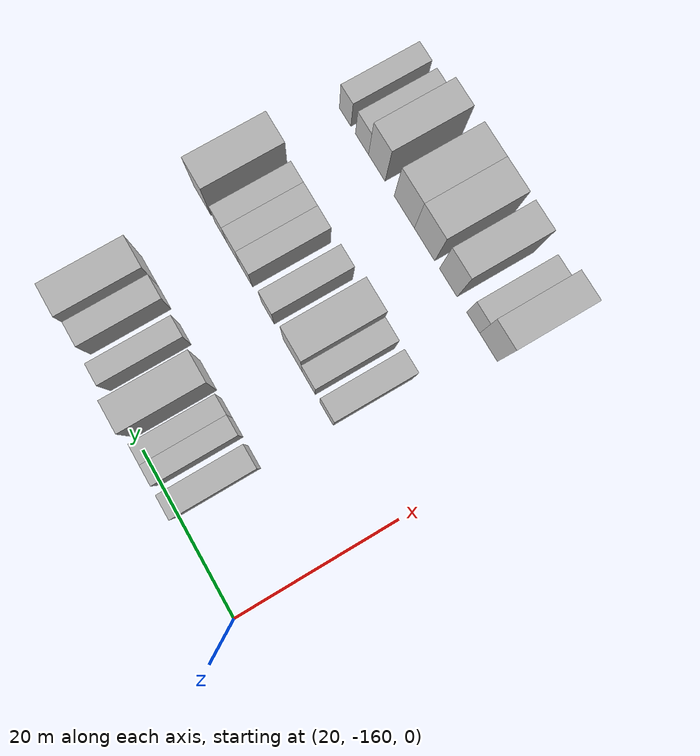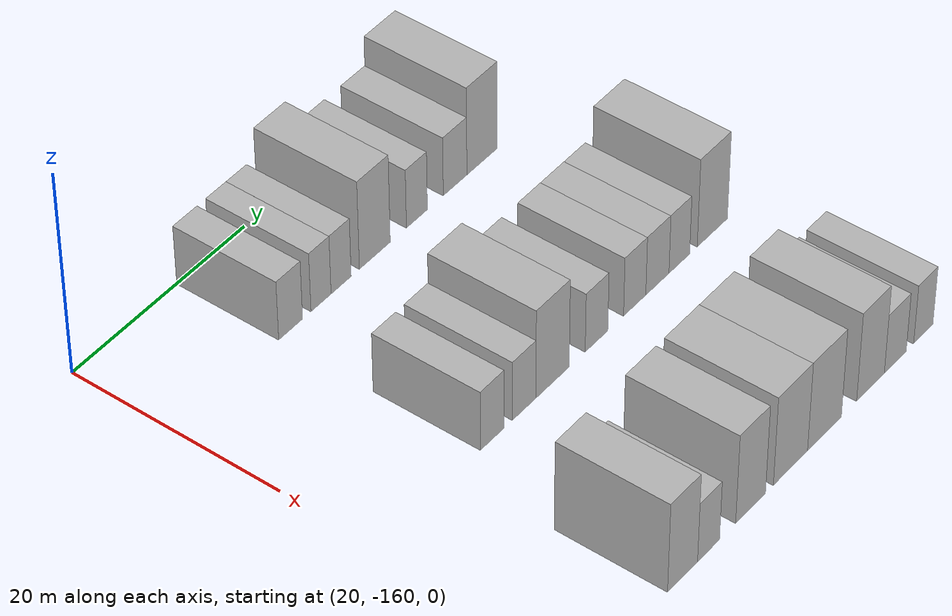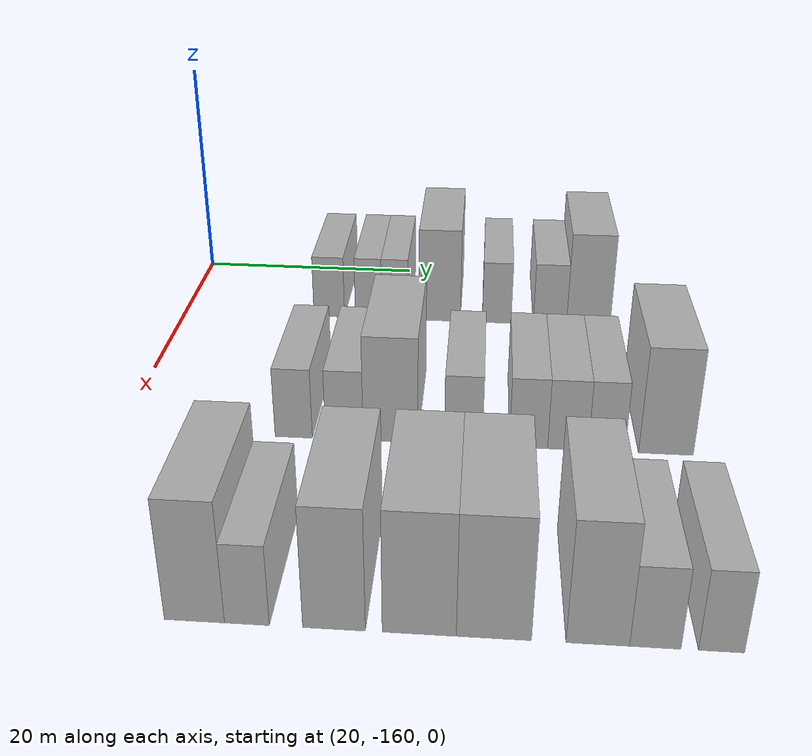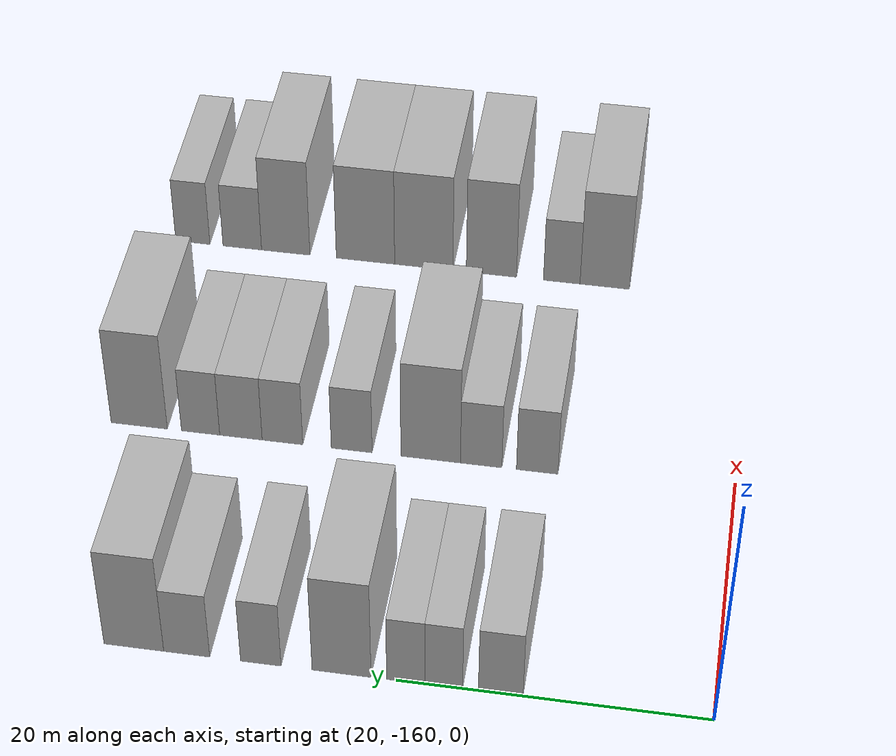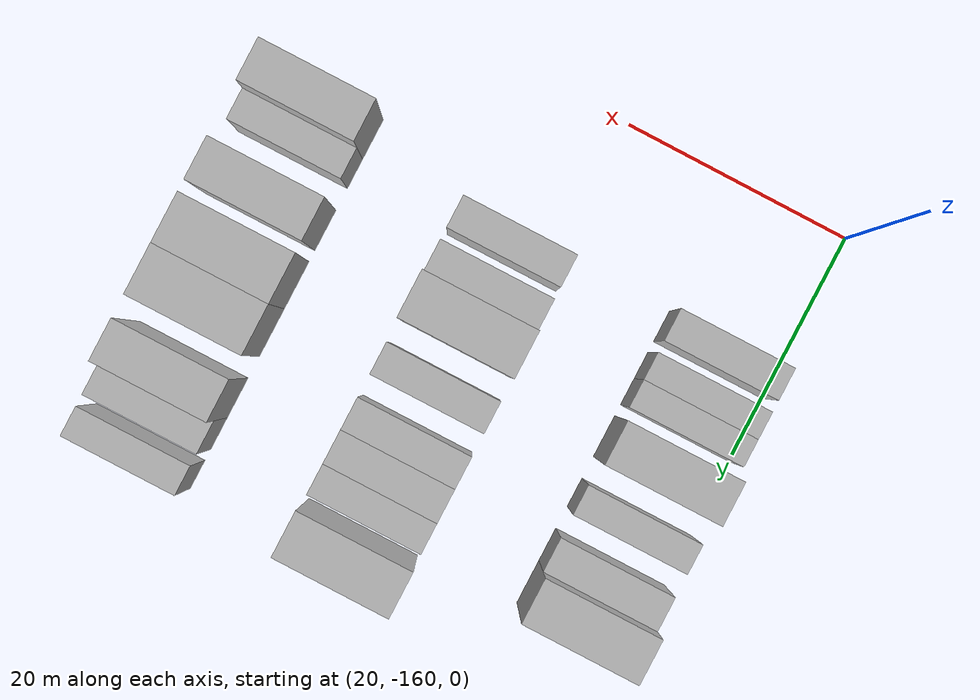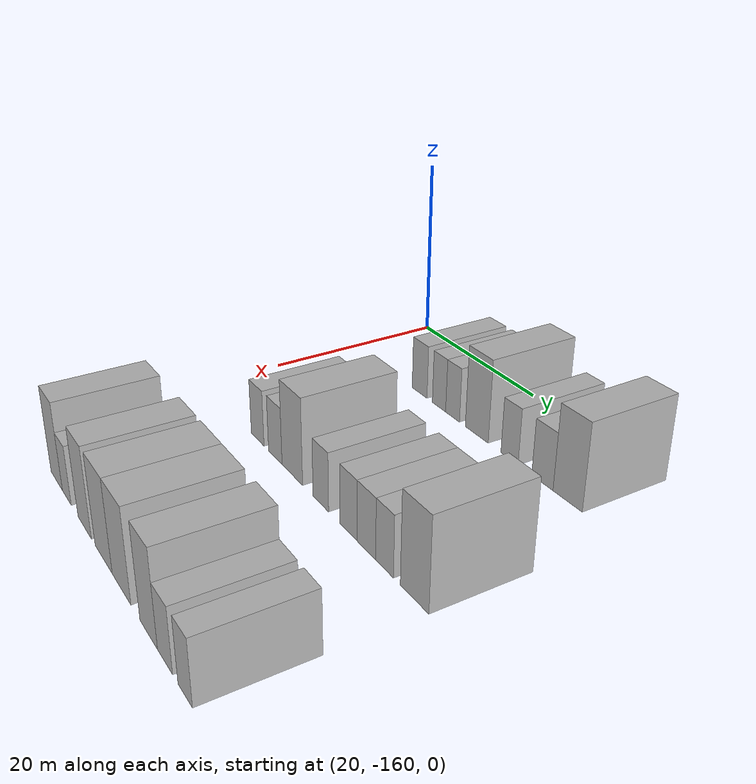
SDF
<sdf version="1.6">
 <world name="default">
  <model name="building_24">
   <static>1</static>
   <pose>25.0000 -146.6283 0 0.000000 0.000000 0.000000</pose>
   <link name="link">
    <pose>0 0 3.00 0 0 0</pose>
    <collision name="collision"><geometry><box><size>10.0000 2.8251 6.0000</size></box></geometry></collision>
    <visual name="visual">
     <cast_shadows>0</cast_shadows>
     <geometry><box><size>10.0000 2.8251 6.0000</size></box></geometry>
     <material>
      <script>
       <uri>model://HANNAS_wall/materials/scripts</uri>
       <uri>model://HANNAS_wall/materials/textures</uri>
       <name>vrc/HANNAS_wall</name>
      </script>
     </material>
    </visual>
   </link>
  </model>
  <model name="building_25">
   <static>1</static>
   <pose>25.0000 -143.0133 0 0.000000 0.000000 0.000000</pose>
   <link name="link">
    <pose>0 0 3.00 0 0 0</pose>
    <collision name="collision"><geometry><box><size>10.0000 2.4048 6.0000</size></box></geometry></collision>
    <visual name="visual">
     <cast_shadows>0</cast_shadows>
     <geometry><box><size>10.0000 2.4048 6.0000</size></box></geometry>
     <material>
      <script>
       <uri>model://HANNAS_wall/materials/scripts</uri>
       <uri>model://HANNAS_wall/materials/textures</uri>
       <name>vrc/HANNAS_wall</name>
      </script>
     </material>
    </visual>
   </link>
  </model>
  <model name="building_26">
   <static>1</static>
   <pose>25.0000 -140.5978 0 0.000000 0.000000 0.000000</pose>
   <link name="link">
    <pose>0 0 3.00 0 0 0</pose>
    <collision name="collision"><geometry><box><size>10.0000 2.4263 6.0000</size></box></geometry></collision>
    <visual name="visual">
     <cast_shadows>0</cast_shadows>
     <geometry><box><size>10.0000 2.4263 6.0000</size></box></geometry>
     <material>
      <script>
       <uri>model://HANNAS_wall/materials/scripts</uri>
       <uri>model://HANNAS_wall/materials/textures</uri>
       <name>vrc/HANNAS_wall</name>
      </script>
     </material>
    </visual>
   </link>
  </model>
  <model name="building_27">
   <static>1</static>
   <pose>25.0000 -136.4963 0 0.000000 0.000000 0.000000</pose>
   <link name="link">
    <pose>0 0 4.50 0 0 0</pose>
    <collision name="collision"><geometry><box><size>10.0000 3.7765 9.0000</size></box></geometry></collision>
    <visual name="visual">
     <cast_shadows>0</cast_shadows>
     <geometry><box><size>10.0000 3.7765 9.0000</size></box></geometry>
     <material>
      <script>
       <uri>model://HANNAS_wall/materials/scripts</uri>
       <uri>model://HANNAS_wall/materials/textures</uri>
       <name>vrc/HANNAS_wall</name>
      </script>
     </material>
    </visual>
   </link>
  </model>
  <model name="building_28">
   <static>1</static>
   <pose>25.0000 -131.3021 0 0.000000 0.000000 0.000000</pose>
   <link name="link">
    <pose>0 0 3.00 0 0 0</pose>
    <collision name="collision"><geometry><box><size>10.0000 2.6121 6.0000</size></box></geometry></collision>
    <visual name="visual">
     <cast_shadows>0</cast_shadows>
     <geometry><box><size>10.0000 2.6121 6.0000</size></box></geometry>
     <material>
      <script>
       <uri>model://HANNAS_wall/materials/scripts</uri>
       <uri>model://HANNAS_wall/materials/textures</uri>
       <name>vrc/HANNAS_wall</name>
      </script>
     </material>
    </visual>
   </link>
  </model>
  <model name="building_29">
   <static>1</static>
   <pose>25.0000 -126.5000 0 0.000000 0.000000 0.000000</pose>
   <link name="link">
    <pose>0 0 3.00 0 0 0</pose>
    <collision name="collision"><geometry><box><size>10.0000 2.9920 6.0000</size></box></geometry></collision>
    <visual name="visual">
     <cast_shadows>0</cast_shadows>
     <geometry><box><size>10.0000 2.9920 6.0000</size></box></geometry>
     <material>
      <script>
       <uri>model://HANNAS_wall/materials/scripts</uri>
       <uri>model://HANNAS_wall/materials/textures</uri>
       <name>vrc/HANNAS_wall</name>
      </script>
     </material>
    </visual>
   </link>
  </model>
  <model name="building_30">
   <static>1</static>
   <pose>25.0000 -123.0553 0 0.000000 0.000000 0.000000</pose>
   <link name="link">
    <pose>0 0 4.50 0 0 0</pose>
    <collision name="collision"><geometry><box><size>10.0000 3.8975 9.0000</size></box></geometry></collision>
    <visual name="visual">
     <cast_shadows>0</cast_shadows>
     <geometry><box><size>10.0000 3.8975 9.0000</size></box></geometry>
     <material>
      <script>
       <uri>model://HANNAS_wall/materials/scripts</uri>
       <uri>model://HANNAS_wall/materials/textures</uri>
       <name>vrc/HANNAS_wall</name>
      </script>
     </material>
    </visual>
   </link>
  </model>
  <model name="building_143">
   <static>1</static>
   <pose>44.0000 -146.5801 0 0.000000 0.000000 0.000000</pose>
   <link name="link">
    <pose>0 0 3.00 0 0 0</pose>
    <collision name="collision"><geometry><box><size>10.0000 2.8451 6.0000</size></box></geometry></collision>
    <visual name="visual">
     <cast_shadows>0</cast_shadows>
     <geometry><box><size>10.0000 2.8451 6.0000</size></box></geometry>
     <material>
      <script>
       <uri>model://HANNAS_wall/materials/scripts</uri>
       <uri>model://HANNAS_wall/materials/textures</uri>
       <name>vrc/HANNAS_wall</name>
      </script>
     </material>
    </visual>
   </link>
  </model>
  <model name="building_144">
   <static>1</static>
   <pose>44.0000 -142.7298 0 0.000000 0.000000 0.000000</pose>
   <link name="link">
    <pose>0 0 3.00 0 0 0</pose>
    <collision name="collision"><geometry><box><size>10.0000 2.8555 6.0000</size></box></geometry></collision>
    <visual name="visual">
     <cast_shadows>0</cast_shadows>
     <geometry><box><size>10.0000 2.8555 6.0000</size></box></geometry>
     <material>
      <script>
       <uri>model://HANNAS_wall/materials/scripts</uri>
       <uri>model://HANNAS_wall/materials/textures</uri>
       <name>vrc/HANNAS_wall</name>
      </script>
     </material>
    </visual>
   </link>
  </model>
  <model name="building_145">
   <static>1</static>
   <pose>44.0000 -139.2412 0 0.000000 0.000000 0.000000</pose>
   <link name="link">
    <pose>0 0 4.50 0 0 0</pose>
    <collision name="collision"><geometry><box><size>10.0000 4.1217 9.0000</size></box></geometry></collision>
    <visual name="visual">
     <cast_shadows>0</cast_shadows>
     <geometry><box><size>10.0000 4.1217 9.0000</size></box></geometry>
     <material>
      <script>
       <uri>model://HANNAS_wall/materials/scripts</uri>
       <uri>model://HANNAS_wall/materials/textures</uri>
       <name>vrc/HANNAS_wall</name>
      </script>
     </material>
    </visual>
   </link>
  </model>
  <model name="building_146">
   <static>1</static>
   <pose>44.0000 -133.7588 0 0.000000 0.000000 0.000000</pose>
   <link name="link">
    <pose>0 0 3.00 0 0 0</pose>
    <collision name="collision"><geometry><box><size>10.0000 2.8431 6.0000</size></box></geometry></collision>
    <visual name="visual">
     <cast_shadows>0</cast_shadows>
     <geometry><box><size>10.0000 2.8431 6.0000</size></box></geometry>
     <material>
      <script>
       <uri>model://HANNAS_wall/materials/scripts</uri>
       <uri>model://HANNAS_wall/materials/textures</uri>
       <name>vrc/HANNAS_wall</name>
      </script>
     </material>
    </visual>
   </link>
  </model>
  <model name="building_147">
   <static>1</static>
   <pose>44.0000 -128.9131 0 0.000000 0.000000 0.000000</pose>
   <link name="link">
    <pose>0 0 3.00 0 0 0</pose>
    <collision name="collision"><geometry><box><size>10.0000 2.8482 6.0000</size></box></geometry></collision>
    <visual name="visual">
     <cast_shadows>0</cast_shadows>
     <geometry><box><size>10.0000 2.8482 6.0000</size></box></geometry>
     <material>
      <script>
       <uri>model://HANNAS_wall/materials/scripts</uri>
       <uri>model://HANNAS_wall/materials/textures</uri>
       <name>vrc/HANNAS_wall</name>
      </script>
     </material>
    </visual>
   </link>
  </model>
  <model name="building_148">
   <static>1</static>
   <pose>44.0000 -125.9942 0 0.000000 0.000000 0.000000</pose>
   <link name="link">
    <pose>0 0 3.00 0 0 0</pose>
    <collision name="collision"><geometry><box><size>10.0000 2.9897 6.0000</size></box></geometry></collision>
    <visual name="visual">
     <cast_shadows>0</cast_shadows>
     <geometry><box><size>10.0000 2.9897 6.0000</size></box></geometry>
     <material>
      <script>
       <uri>model://HANNAS_wall/materials/scripts</uri>
       <uri>model://HANNAS_wall/materials/textures</uri>
       <name>vrc/HANNAS_wall</name>
      </script>
     </material>
    </visual>
   </link>
  </model>
  <model name="building_149">
   <static>1</static>
   <pose>44.0000 -123.1475 0 0.000000 0.000000 0.000000</pose>
   <link name="link">
    <pose>0 0 3.00 0 0 0</pose>
    <collision name="collision"><geometry><box><size>10.0000 2.7037 6.0000</size></box></geometry></collision>
    <visual name="visual">
     <cast_shadows>0</cast_shadows>
     <geometry><box><size>10.0000 2.7037 6.0000</size></box></geometry>
     <material>
      <script>
       <uri>model://HANNAS_wall/materials/scripts</uri>
       <uri>model://HANNAS_wall/materials/textures</uri>
       <name>vrc/HANNAS_wall</name>
      </script>
     </material>
    </visual>
   </link>
  </model>
  <model name="building_150">
   <static>1</static>
   <pose>44.0000 -118.8008 0 0.000000 0.000000 0.000000</pose>
   <link name="link">
    <pose>0 0 4.50 0 0 0</pose>
    <collision name="collision"><geometry><box><size>10.0000 3.9897 9.0000</size></box></geometry></collision>
    <visual name="visual">
     <cast_shadows>0</cast_shadows>
     <geometry><box><size>10.0000 3.9897 9.0000</size></box></geometry>
     <material>
      <script>
       <uri>model://HANNAS_wall/materials/scripts</uri>
       <uri>model://HANNAS_wall/materials/textures</uri>
       <name>vrc/HANNAS_wall</name>
      </script>
     </material>
    </visual>
   </link>
  </model>
  <model name="building_264">
   <static>1</static>
   <pose>63.0000 -149.2239 0 0.000000 0.000000 0.000000</pose>
   <link name="link">
    <pose>0 0 4.50 0 0 0</pose>
    <collision name="collision"><geometry><box><size>10.0000 3.6474 9.0000</size></box></geometry></collision>
    <visual name="visual">
     <cast_shadows>0</cast_shadows>
     <geometry><box><size>10.0000 3.6474 9.0000</size></box></geometry>
     <material>
      <script>
       <uri>model://HANNAS_wall/materials/scripts</uri>
       <uri>model://HANNAS_wall/materials/textures</uri>
       <name>vrc/HANNAS_wall</name>
      </script>
     </material>
    </visual>
   </link>
  </model>
  <model name="building_265">
   <static>1</static>
   <pose>63.0000 -146.0497 0 0.000000 0.000000 0.000000</pose>
   <link name="link">
    <pose>0 0 3.00 0 0 0</pose>
    <collision name="collision"><geometry><box><size>10.0000 2.7010 6.0000</size></box></geometry></collision>
    <visual name="visual">
     <cast_shadows>0</cast_shadows>
     <geometry><box><size>10.0000 2.7010 6.0000</size></box></geometry>
     <material>
      <script>
       <uri>model://HANNAS_wall/materials/scripts</uri>
       <uri>model://HANNAS_wall/materials/textures</uri>
       <name>vrc/HANNAS_wall</name>
      </script>
     </material>
    </visual>
   </link>
  </model>
  <model name="building_266">
   <static>1</static>
   <pose>63.0000 -140.8308 0 0.000000 0.000000 0.000000</pose>
   <link name="link">
    <pose>0 0 4.50 0 0 0</pose>
    <collision name="collision"><geometry><box><size>10.0000 3.7367 9.0000</size></box></geometry></collision>
    <visual name="visual">
     <cast_shadows>0</cast_shadows>
     <geometry><box><size>10.0000 3.7367 9.0000</size></box></geometry>
     <material>
      <script>
       <uri>model://HANNAS_wall/materials/scripts</uri>
       <uri>model://HANNAS_wall/materials/textures</uri>
       <name>vrc/HANNAS_wall</name>
      </script>
     </material>
    </visual>
   </link>
  </model>
  <model name="building_267">
   <static>1</static>
   <pose>63.0000 -135.7809 0 0.000000 0.000000 0.000000</pose>
   <link name="link">
    <pose>0 0 4.50 0 0 0</pose>
    <collision name="collision"><geometry><box><size>10.0000 4.3631 9.0000</size></box></geometry></collision>
    <visual name="visual">
     <cast_shadows>0</cast_shadows>
     <geometry><box><size>10.0000 4.3631 9.0000</size></box></geometry>
     <material>
      <script>
       <uri>model://HANNAS_wall/materials/scripts</uri>
       <uri>model://HANNAS_wall/materials/textures</uri>
       <name>vrc/HANNAS_wall</name>
      </script>
     </material>
    </visual>
   </link>
  </model>
  <model name="building_268">
   <static>1</static>
   <pose>63.0000 -131.4045 0 0.000000 0.000000 0.000000</pose>
   <link name="link">
    <pose>0 0 4.50 0 0 0</pose>
    <collision name="collision"><geometry><box><size>10.0000 4.3897 9.0000</size></box></geometry></collision>
    <visual name="visual">
     <cast_shadows>0</cast_shadows>
     <geometry><box><size>10.0000 4.3897 9.0000</size></box></geometry>
     <material>
      <script>
       <uri>model://HANNAS_wall/materials/scripts</uri>
       <uri>model://HANNAS_wall/materials/textures</uri>
       <name>vrc/HANNAS_wall</name>
      </script>
     </material>
    </visual>
   </link>
  </model>
  <model name="building_269">
   <static>1</static>
   <pose>63.0000 -125.3756 0 0.000000 0.000000 0.000000</pose>
   <link name="link">
    <pose>0 0 4.50 0 0 0</pose>
    <collision name="collision"><geometry><box><size>10.0000 3.6679 9.0000</size></box></geometry></collision>
    <visual name="visual">
     <cast_shadows>0</cast_shadows>
     <geometry><box><size>10.0000 3.6679 9.0000</size></box></geometry>
     <material>
      <script>
       <uri>model://HANNAS_wall/materials/scripts</uri>
       <uri>model://HANNAS_wall/materials/textures</uri>
       <name>vrc/HANNAS_wall</name>
      </script>
     </material>
    </visual>
   </link>
  </model>
  <model name="building_270">
   <static>1</static>
   <pose>63.0000 -122.0742 0 0.000000 0.000000 0.000000</pose>
   <link name="link">
    <pose>0 0 3.00 0 0 0</pose>
    <collision name="collision"><geometry><box><size>10.0000 2.9349 6.0000</size></box></geometry></collision>
    <visual name="visual">
     <cast_shadows>0</cast_shadows>
     <geometry><box><size>10.0000 2.9349 6.0000</size></box></geometry>
     <material>
      <script>
       <uri>model://HANNAS_wall/materials/scripts</uri>
       <uri>model://HANNAS_wall/materials/textures</uri>
       <name>vrc/HANNAS_wall</name>
      </script>
     </material>
    </visual>
   </link>
  </model>
  <model name="building_271">
   <static>1</static>
   <pose>63.0000 -118.3020 0 0.000000 0.000000 0.000000</pose>
   <link name="link">
    <pose>0 0 3.00 0 0 0</pose>
    <collision name="collision"><geometry><box><size>10.0000 2.6096 6.0000</size></box></geometry></collision>
    <visual name="visual">
     <cast_shadows>0</cast_shadows>
     <geometry><box><size>10.0000 2.6096 6.0000</size></box></geometry>
     <material>
      <script>
       <uri>model://HANNAS_wall/materials/scripts</uri>
       <uri>model://HANNAS_wall/materials/textures</uri>
       <name>vrc/HANNAS_wall</name>
      </script>
     </material>
    </visual>
   </link>
  </model>
 </world>
</sdf>
